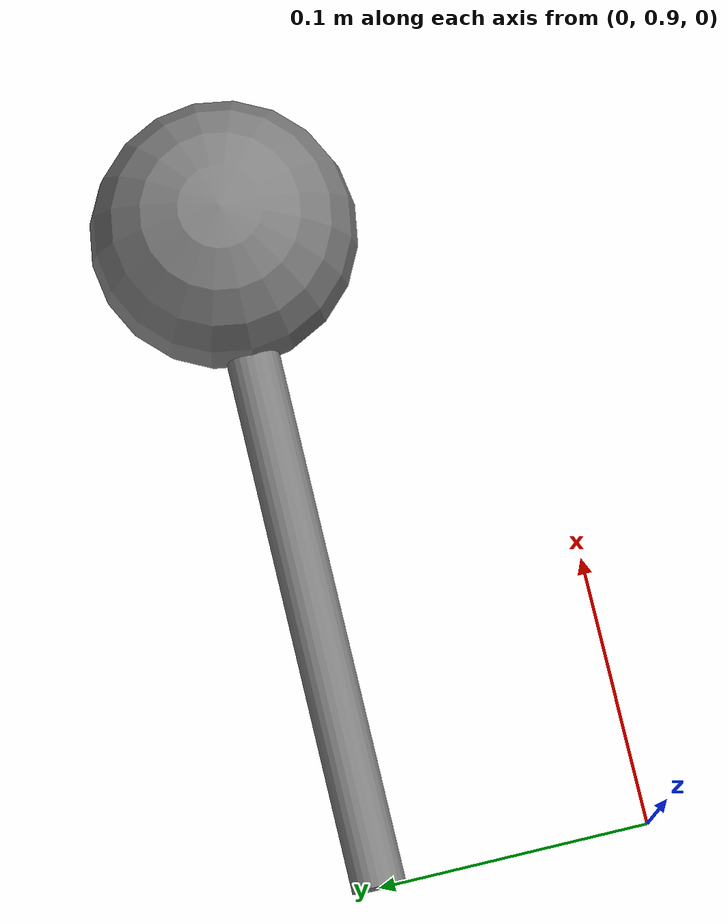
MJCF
<mujoco model="pendulum">
  <option gravity="0 -9.81 0" />

  <worldbody>
    <light diffuse=".5 .5 .5" pos="0 0 -3" dir="0 0 1"/>
    <body name="hinge_body" pos="0 1 0">
      <joint name="hinge" type="hinge" axis="0 0 1" damping="0" friction="0"/>
      <body name="rod" pos="0 0 0">
        <geom name="rod_geom" type="cylinder" size="0.01 0.12425" fromto="0 0 0 0.2485 0 0" mass="0" contype="0" conaffinity="0"/>
        <body name="bob" pos="0.2485 0 0">
          <geom name="bob_geom" type="sphere" size="0.05" mass="1.0"/>
        </body>
      </body>
    </body>
  </worldbody>

  <keyframe>
    <key name="horizontal" qpos="1.5708 0 0" />
  </keyframe>
</mujoco>
